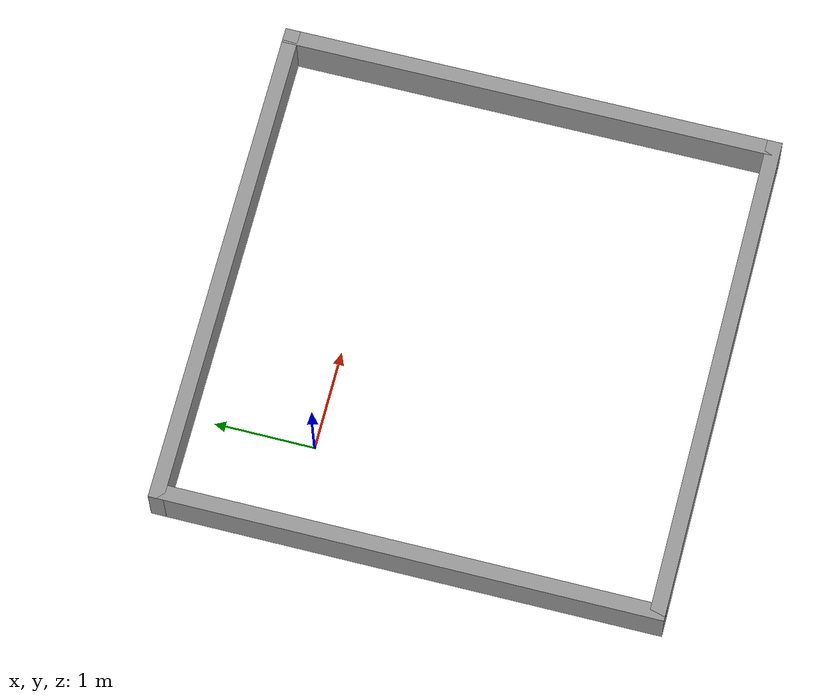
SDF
<?xml version='1.0'?>
<sdf version='1.7'>
  <model name='square'>
    <pose>1.485 -1.155 0 0 -0 0</pose>
    <link name='Wall_5'>
      <collision name='Wall_5_Collision'>
        <geometry>
          <box>
            <size>5 0.15 0.5</size>
          </box>
        </geometry>
        <pose>0 0 0.25 0 -0 0</pose>
      </collision>
      <visual name='Wall_5_Visual'>
        <pose>0 0 0.25 0 -0 0</pose>
        <geometry>
          <box>
            <size>5 0.15 0.5</size>
          </box>
        </geometry>
        <material>
          <script>
            <uri>file://media/materials/scripts/gazebo.material</uri>
            <name>Gazebo/Grey</name>
          </script>
          <ambient>0 0 0 1</ambient>
        </material>
        <meta>
          <layer>0</layer>
        </meta>
      </visual>
      <pose>0 -2.425 0 0 -0 0</pose>
    </link>
    <link name='Wall_6'>
      <collision name='Wall_6_Collision'>
        <geometry>
          <box>
            <size>5 0.15 0.5</size>
          </box>
        </geometry>
        <pose>0 0 0.25 0 -0 0</pose>
      </collision>
      <visual name='Wall_6_Visual'>
        <pose>0 0 0.25 0 -0 0</pose>
        <geometry>
          <box>
            <size>5 0.15 0.5</size>
          </box>
        </geometry>
        <material>
          <script>
            <uri>file://media/materials/scripts/gazebo.material</uri>
            <name>Gazebo/Grey</name>
          </script>
          <ambient>0 0 0 1</ambient>
        </material>
        <meta>
          <layer>0</layer>
        </meta>
      </visual>
      <pose>2.425 0 0 0 -0 1.5708</pose>
    </link>
    <link name='Wall_7'>
      <collision name='Wall_7_Collision'>
        <geometry>
          <box>
            <size>5 0.15 0.5</size>
          </box>
        </geometry>
        <pose>0 0 0.25 0 -0 0</pose>
      </collision>
      <visual name='Wall_7_Visual'>
        <pose>0 0 0.25 0 -0 0</pose>
        <geometry>
          <box>
            <size>5 0.15 0.5</size>
          </box>
        </geometry>
        <material>
          <script>
            <uri>file://media/materials/scripts/gazebo.material</uri>
            <name>Gazebo/Grey</name>
          </script>
          <ambient>0 0 0 1</ambient>
        </material>
        <meta>
          <layer>0</layer>
        </meta>
      </visual>
      <pose>0 2.425 0 0 -0 3.14159</pose>
    </link>
    <link name='Wall_8'>
      <collision name='Wall_8_Collision'>
        <geometry>
          <box>
            <size>5 0.15 0.5</size>
          </box>
        </geometry>
        <pose>0 0 0.25 0 -0 0</pose>
      </collision>
      <visual name='Wall_8_Visual'>
        <pose>0 0 0.25 0 -0 0</pose>
        <geometry>
          <box>
            <size>5 0.15 0.5</size>
          </box>
        </geometry>
        <material>
          <script>
            <uri>file://media/materials/scripts/gazebo.material</uri>
            <name>Gazebo/Grey</name>
          </script>
          <ambient>0 0 0 1</ambient>
        </material>
        <meta>
          <layer>0</layer>
        </meta>
      </visual>
      <pose>-2.425 0 0 0 -0 -1.5708</pose>
    </link>
    <static>1</static>
  </model>
</sdf>
